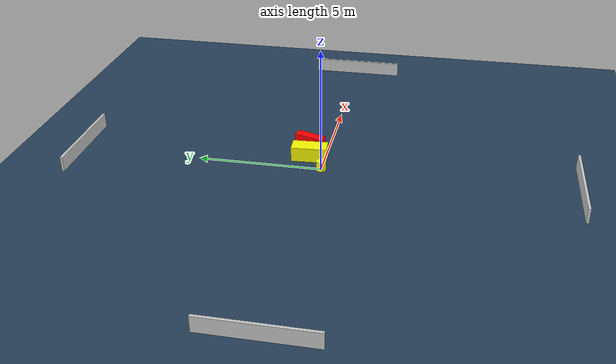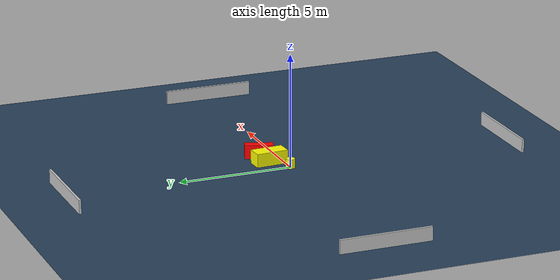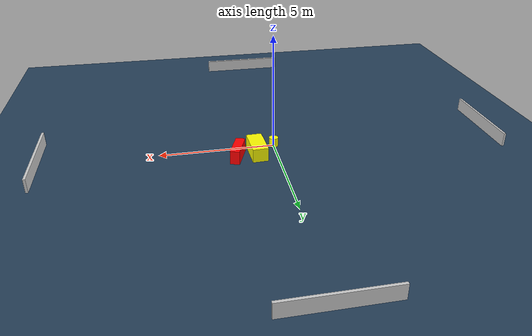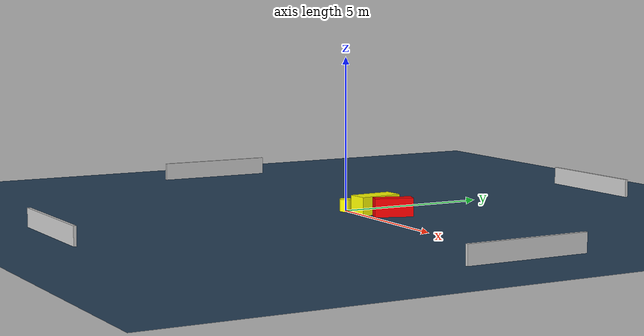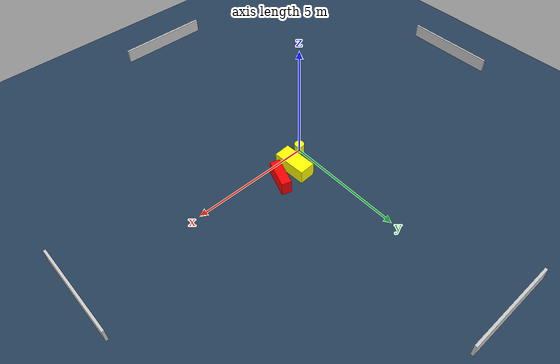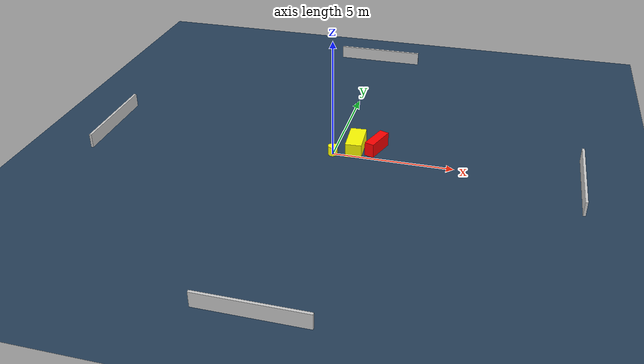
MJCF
<?xml version="1.0" ?>
<mujoco model="generated_environment">
  <option timestep="0.01" integrator="RK4" cone="elliptic"/>
  <default>
    <geom density="1"/>
  </default>
  <asset>
    <texture builtin="gradient" height="3072" name="skybox" rgb1="0.3 0.5 0.7" rgb2="0 0 0" type="skybox" width="512"/>
    <texture builtin="checker" height="300" name="groundplane" rgb1="0.2 0.3 0.4" rgb2="0.1 0.2 0.3" type="2d" width="300"/>
    <material name="groundplane" reflectance="0.2" texrepeat="5 5" texture="groundplane"/>
  </asset>
  <worldbody>
    <light dir="0 0 -1" directional="true" pos="0 0 1.5"/>
    <geom condim="3" friction="0.5 0.005 0.001" material="groundplane" name="floor" pos="0 0 0" size="0 0 0.05" type="plane"/>
    <body name="walls">
      <geom name="wall_1" condim="4" pos="-10.0 0.0 0.3" rgba="0.800000011920929 0.800000011920929 0.800000011920929 1.0" size="0.05 2.0 0.3" type="box"/>
      <geom name="wall_2" condim="4" pos="10.0 0.0 0.3" rgba="0.800000011920929 0.800000011920929 0.800000011920929 1.0" size="0.05 2.0 0.3" type="box"/>
      <geom name="wall_3" condim="4" pos="0.0 -10.0 0.3" rgba="0.800000011920929 0.800000011920929 0.800000011920929 1.0" size="2.0 0.05 0.3" type="box"/>
      <geom name="wall_4" condim="4" pos="0.0 10.0 0.3" rgba="0.800000011920929 0.800000011920929 0.800000011920929 1.0" size="2.0 0.05 0.3" type="box"/>
    </body>
    <body name="robot">
      <joint name="joint_x" type="slide" pos="0 0 0" axis="1 0 0"/>
      <joint name="joint_y" type="slide" pos="0 0 0" axis="0 1 0"/>
      <geom name="robot" type="cylinder" pos="0.0 0.0 0.2" size="0.2 0.2 0.0" mass="5.0" friction="1.0 0.005 0.0001" condim="4" rgba="1.0 1.0 0.0 1.0"/>
    </body>
    <body name="obstacle_1_movable">
      <geom name="obstacle_1_movable" condim="4" pos="0.8397168918621195 0.629551321338449 0.3" euler="0 0 273.0564562811765" friction="0.0 0.005 0.001" rgba="1.0 1.0 0.0 1.0" size="0.7131932012231326 0.3383156432960511 0.3" type="box" mass="0.1"/>
      <joint type="free"/>
    </body>
    <body name="obstacle_2_static">
      <geom name="obstacle_2_static" condim="4" pos="1.6956290917595955 0.7720907283330692 0.3" euler="0 0 250.63309700327272" friction="0.0 0.005 0.001" rgba="1.0 0.0 0.0 1.0" size="0.6199583229551058 0.202916922070284 0.3" type="box"/>
    </body>
  </worldbody>
  <actuator>
    <motor name="actuator_x" joint="joint_x" gear="1" ctrlrange="-1 1"/>
    <motor name="actuator_y" joint="joint_y" gear="1" ctrlrange="-1 1"/>
  </actuator>
</mujoco>
